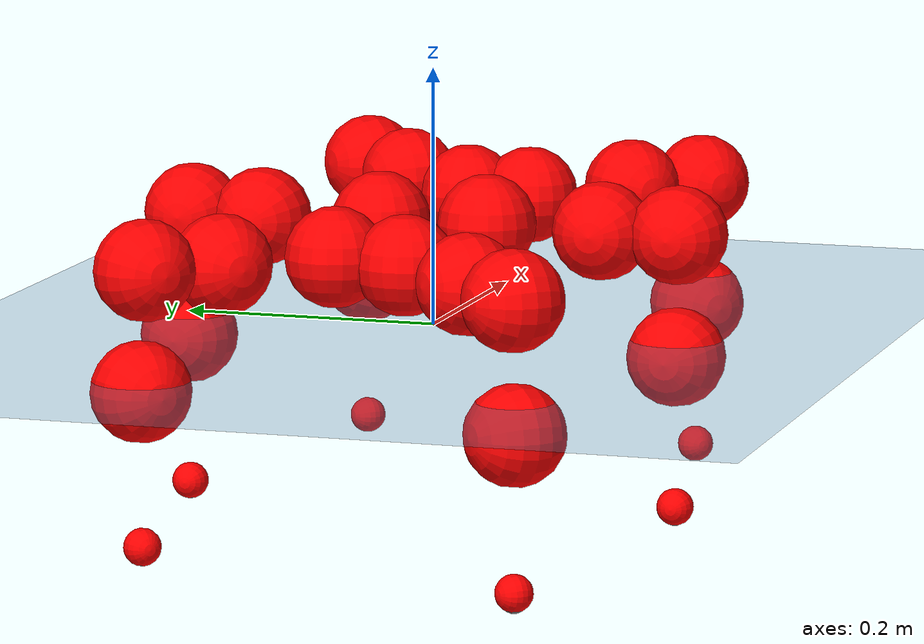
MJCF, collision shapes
<mujoco model="Golem">
  <compiler angle="radian" assetdir="assets" balanceinertia="true" inertiafromgeom="false"/>

  <option timestep="0.005" density="1.2" viscosity="2e-05"/>

  <size nkey="1"/>

  <visual>
    <quality shadowsize="8192"/>
    <map shadowclip="0.5"/>
  </visual>

  <default>
    <default class="/">
      <joint armature="0.01" damping="0.01" frictionloss="0.01"/>
      <geom contype="0" conaffinity="0" group="1" solref="-1000 -80"/>
      <site size="0.01 0.005 0.005" group="5"/>
      <general forcelimited="true" biastype="affine" gainprm="25" biasprm="0 -25 -0.5"/>
      <default class="visual">
        <geom type="mesh" group="2"/>
      </default>
      <default class="collision">
        <geom group="3"/>
      </default>
      <default class="foot">
        <geom size="0.01 0 0" condim="6" group="4" priority="1" solimp="0.015 1 0.01"/>
      </default>
      <default class="reward_collision_sphere">
        <geom group="5" rgba="1 0 0 1"/>
      </default>
    </default>
  </default>

  <asset>
    <texture type="skybox" colorspace="auto" name="//unnamed_texture_0" builtin="gradient" rgb1="0.95 0.95 0.95" rgb2="0.95 0.95 0.95" width="100" height="600"/>
    <texture type="2d" colorspace="auto" name="texplane" builtin="checker" rgb1="0.345 0.575 0.748" rgb2="0.345 0.575 0.748" markrgb="1 1 1" width="512" height="512"/>
    <material name="MatPlane" class="/" texture="texplane" texuniform="true" texrepeat="2 2" specular="0.9"/>
    <mesh name="body" class="/" file="body.stl" scale="0.001 0.001 0.001"/>
    <mesh name="coxa" class="/" file="coxa.stl" scale="0.001 0.001 0.001"/>
    <mesh name="femur" class="/" file="femur.stl" scale="0.001 0.001 0.001"/>
    <mesh name="tibia" class="/" file="tibia.stl" scale="0.001 0.001 0.001"/>
    <mesh name="tarsus" class="/" file="tarsus.stl" scale="0.001 0.001 0.001"/>
  </asset>

  <worldbody>
    <geom name="floor" class="/" size="100 100 0.125" type="plane" group="0" material="MatPlane"/>
    <light name="toplight_shadow" class="/" pos="0 0 5" dir="0.0990148 0.0990148 -0.990148" type="directional" ambient="0.04 0.04 0.04" diffuse="0.55 0.55 0.55" specular="0.12 0.12 0.12"/>
    <light name="toplight_fill" class="/" pos="0 0 5" dir="0.0990148 0.0990148 -0.990148" type="directional" castshadow="false" ambient="0.04 0.04 0.04" diffuse="0.3 0.3 0.3" specular="0.08 0.08 0.08"/>
    <body name="trunk" pos="0.00234153 -0.0020448 0.00107886" quat="1 -0.000105831 6.1447e-05 0.000151558">
      <inertial pos="-0.00159755 -0.00191097 0.00273026" quat="0.999982 0.00171404 -0.00212259 -0.00530059" mass="3.14918" diaginertia="0.0148768 0.000626468 0.0256028"/>
      <joint name="//unnamed_joint_0" type="free"/>
      <geom name="//unnamed_geom_1" class="/" pos="0 0 0.0768272" quat="1 0 0 0" type="mesh" rgba="0.9 0.9 0.9 1" mesh="body"/>
      <site name="imu" class="/" pos="0.132777 -0.00329347 0.111759" size="0.00955088"/>
      <camera name="track" class="/" pos="0 -1.15257 0" quat="0.707107 0.707107 0 0" mode="trackcom"/>
      <camera name="ego_camera" class="/" pos="0.141512 0 0.120043" quat="-0.5 -0.5 0.5 0.5"/>
      <body name="coxa_RR" pos="-0.192638 -0.0513755 0.0745812" quat="0.382736 -0.000727583 -0.000292878 -0.923858">
        <inertial pos="0.00027371 0.00325686 -0.0026837" quat="0.999968 -0.00422191 0.00663563 -0.00132052" mass="0.17369" diaginertia="0.0155261 0.000620704 0.024862"/>
        <joint name="coxa_joint_RR" class="/" pos="0 0 0" axis="0.00333127 0.00219936 -0.999992" range="-3.14489 3.14028" armature="0.00947666" damping="0.0213528" frictionloss="0.00853165"/>
        <geom name="//unnamed_geom_2" class="/" type="mesh" rgba="0.2 0.2 0.2 1" mesh="coxa"/>
        <geom name="//unnamed_geom_3" class="reward_collision_sphere" size="0.0382035" pos="-0.0326567 0 0"/>
        <body name="femur_RR" pos="0.0612438 0.00219561 0.000123546" quat="0.49948 -0.499993 0.50077 0.499756">
          <inertial pos="0.000309291 0.0012904 -0.00234926" quat="1 3.08417e-05 4.57544e-05 -7.43111e-05" mass="0.172365" diaginertia="0.0150977 0.00062348 0.0245215"/>
          <joint name="femur_joint_RR" class="/" pos="0 0 0" axis="0.00310299 0.00139741 -0.999994" range="-3.15082 3.16382" armature="0.00946111" damping="0.0122688" frictionloss="0.00934879"/>
          <geom name="//unnamed_geom_4" class="/" type="mesh" rgba="0.9 0.9 0.9 1" mesh="femur"/>
          <geom name="//unnamed_geom_5" class="reward_collision_sphere" size="0.0382035"/>
          <body name="tibia_RR" pos="0.00256389 -0.0630128 0.00374905" quat="3.51463e-06 1 0.000368212 5.10284e-05">
            <inertial pos="0.00152868 -0.000275802 0.00238296" quat="0.999976 -0.00358862 -0.00295357 -0.00520203" mass="0.178545" diaginertia="0.0156556 0.000643648 0.0242599"/>
            <joint name="tibia_joint_RR" class="/" pos="0 0 0" axis="-0.000775745 -0.000562125 1" range="-3.17641 3.22458" armature="0.00828094" damping="0.0110961" frictionloss="0.0106102"/>
            <geom name="//unnamed_geom_6" class="/" type="mesh" rgba="0.2 0.2 0.2 1" mesh="tibia"/>
            <geom name="//unnamed_geom_7" class="reward_collision_sphere" size="0.0382035"/>
            <body name="tarsus_RR" pos="0.0987722 0.00187276 -0.000943477" quat="1 3.74613e-05 -0.000679822 -0.000257296">
              <inertial pos="0.0655757 -0.00407893 0.00106034" quat="0.496913 0.500409 0.507207 0.495387" mass="0.164431" diaginertia="0.0146359 0.000609424 0.0241981"/>
              <joint name="tarsus_joint_RR" class="/" pos="0 0 0" axis="-0.00071582 -0.000173748 1" range="-3.19944 3.12222" armature="0.010712" damping="0.0448964" frictionloss="0.0103179"/>
              <geom name="//unnamed_geom_8" class="/" type="mesh" rgba="0.9 0.9 0.9 1" mesh="tarsus"/>
              <geom name="foot_1" class="foot" size="0.0101663" pos="0.121918 0 0" quat="0 -0.707107 0 0.707107"/>
              <geom name="//unnamed_geom_10" class="reward_collision_sphere" size="0.0382035"/>
              <geom name="//unnamed_geom_11" class="reward_collision_sphere" size="0.0143263" pos="0.11702 0 0"/>
              <site name="foot_1" class="foot" pos="0.121918 0 0" quat="0 -0.707107 0 0.707107" size="0.00955088"/>
            </body>
          </body>
        </body>
      </body>
      <body name="coxa_RM" pos="-0.00267529 -0.0740825 0.0800962" quat="0.70678 0.000312415 -0.000215925 -0.707433">
        <inertial pos="-0.00126893 0.00198371 0.0029796" quat="1 -5.153e-05 7.45021e-05 2.26896e-05" mass="0.178645" diaginertia="0.015818 0.000654656 0.0257438"/>
        <joint name="coxa_joint_RM" class="/" pos="0 0 0" axis="-0.00817365 -0.000283896 -0.999967" stiffness="0.0149197" range="-3.18825 3.08482" armature="0.00996216" damping="0.0350955" frictionloss="0.0113977"/>
        <geom name="//unnamed_geom_12" class="/" type="mesh" rgba="0.2 0.2 0.2 1" mesh="coxa"/>
        <geom name="//unnamed_geom_13" class="reward_collision_sphere" size="0.0382035" pos="-0.0326567 0 0"/>
        <body name="femur_RM" pos="0.058846 0.000451132 -0.00121277" quat="0.499287 -0.499749 0.500852 0.50011">
          <inertial pos="0.00109077 -0.00162911 -0.000367554" quat="0.999914 0.00877231 0.000563224 0.00974499" mass="0.168248" diaginertia="0.015378 0.000603058 0.0246946"/>
          <joint name="femur_joint_RM" class="/" pos="0 0 0" axis="0.00464158 -0.0131864 -0.999902" range="-3.08728 3.10705" armature="0.00868276" damping="0.0102837" frictionloss="0.00945601"/>
          <geom name="//unnamed_geom_14" class="/" type="mesh" rgba="0.9 0.9 0.9 1" mesh="femur"/>
          <geom name="//unnamed_geom_15" class="reward_collision_sphere" size="0.0382035"/>
          <body name="tibia_RM" pos="0.000377739 -0.0603116 0.00125209" quat="1.23569e-05 1 1.33928e-05 -5.41214e-05">
            <inertial pos="0.00322947 0.00209066 0.0026719" quat="0.999858 -0.00413991 -0.0154416 -0.00526816" mass="0.173929" diaginertia="0.0153708 0.000638957 0.0260694"/>
            <joint name="tibia_joint_RM" class="/" pos="0 0 0" axis="0.00150923 0.000635664 0.999999" range="-3.12873 3.17603" armature="0.0103867" damping="0" frictionloss="0.0101188"/>
            <geom name="//unnamed_geom_16" class="/" type="mesh" rgba="0.2 0.2 0.2 1" mesh="tibia"/>
            <geom name="//unnamed_geom_17" class="reward_collision_sphere" size="0.0382035"/>
            <body name="tarsus_RM" pos="0.0937565 -3.03821e-05 0.00311168" quat="0.999999 0.000709566 0.000815603 0.000680155">
              <inertial pos="0.0647417 0.00264558 -0.00191062" quat="0.504126 0.502493 0.494203 0.499121" mass="0.175849" diaginertia="0.0158335 0.000621421 0.0251856"/>
              <joint name="tarsus_joint_RM" class="/" pos="0 0 0" axis="-0.00620395 0.00923062 0.999938" range="-3.13373 3.13942" armature="0.0106561" damping="0.00162421" frictionloss="0.0103828"/>
              <geom name="//unnamed_geom_18" class="/" type="mesh" rgba="0.9 0.9 0.9 1" mesh="tarsus"/>
              <geom name="foot_2" class="foot" size="0.00976997" pos="0.121918 0 0" quat="0 -0.707107 0 0.707107"/>
              <geom name="//unnamed_geom_20" class="reward_collision_sphere" size="0.0382035"/>
              <geom name="//unnamed_geom_21" class="reward_collision_sphere" size="0.0143263" pos="0.11702 0 0"/>
              <site name="foot_2" class="foot" pos="0.121918 0 0" quat="0 -0.707107 0 0.707107" size="0.00955088"/>
            </body>
          </body>
        </body>
      </body>
      <body name="coxa_RF" pos="0.197606 -0.0473774 0.074498" quat="0.923823 -0.000191833 0.000320163 -0.38282">
        <inertial pos="-0.00125778 -5.27195e-05 0.00082967" quat="0.999951 0.00366329 0.00923675 -6.47687e-06" mass="0.174158" diaginertia="0.0146052 0.00064969 0.0252507"/>
        <joint name="coxa_joint_RF" class="/" pos="0 0 0" axis="-0.00272221 0.00273459 -0.999993" range="-3.15746 3.10128" armature="0.0086211" damping="0.0273965" frictionloss="0.00889524"/>
        <geom name="//unnamed_geom_22" class="/" type="mesh" rgba="0.2 0.2 0.2 1" mesh="coxa"/>
        <geom name="//unnamed_geom_23" class="reward_collision_sphere" size="0.0382035" pos="-0.0326567 0 0"/>
        <body name="femur_RF" pos="0.0620816 0.00257371 -0.000963832" quat="0.500655 -0.499433 0.499725 0.500186">
          <inertial pos="-0.00128573 -0.0028787 0.000574816" quat="0.999913 -0.00795687 -0.00711435 -0.00772569" mass="0.169513" diaginertia="0.0145237 0.000590247 0.0250938"/>
          <joint name="femur_joint_RF" class="/" pos="0 0 0" axis="0.00270181 0.00233707 -0.999994" range="-3.16903 3.15723" armature="0.0096373" damping="0.00784106" frictionloss="0.0107136"/>
          <geom name="//unnamed_geom_24" class="/" type="mesh" rgba="0.9 0.9 0.9 1" mesh="femur"/>
          <geom name="//unnamed_geom_25" class="reward_collision_sphere" size="0.0382035"/>
          <body name="tibia_RF" pos="0.00102069 -0.0658413 0.00117198" quat="-5.80474e-05 1 0.000170076 8.89086e-05">
            <inertial pos="0.00231945 0.000766419 -9.36507e-05" quat="0.999913 0.0127612 0.00295971 0.0012351" mass="0.171102" diaginertia="0.0143632 0.00061924 0.0244672"/>
            <joint name="tibia_joint_RF" class="/" pos="0 0 0" axis="0.00139054 -0.00609557 0.99998" range="-3.10744 3.08626" armature="0.0104719" damping="0.000175541" frictionloss="0.00991485"/>
            <geom name="//unnamed_geom_26" class="/" type="mesh" rgba="0.2 0.2 0.2 1" mesh="tibia"/>
            <geom name="//unnamed_geom_27" class="reward_collision_sphere" size="0.0382035"/>
            <body name="tarsus_RF" pos="0.0995173 -0.00223902 -0.00258804" quat="0.999999 -0.000326888 0.00128157 0.000291058">
              <inertial pos="0.0687072 0.00298765 -0.00251146" quat="0.495739 0.516557 0.495617 0.491707" mass="0.174041" diaginertia="0.0147027 0.000658523 0.024634"/>
              <joint name="tarsus_joint_RF" class="/" pos="0 0 0" axis="0.00296188 0.00141236 0.999995" stiffness="0.0197824" range="-3.19442 3.10586" armature="0.00751529" damping="0.0133489" frictionloss="0.00935689"/>
              <geom name="//unnamed_geom_28" class="/" type="mesh" rgba="0.9 0.9 0.9 1" mesh="tarsus"/>
              <geom name="foot_3" class="foot" size="0.00857795" pos="0.121918 0 0" quat="0 -0.707107 0 0.707107"/>
              <geom name="//unnamed_geom_30" class="reward_collision_sphere" size="0.0382035"/>
              <geom name="//unnamed_geom_31" class="reward_collision_sphere" size="0.0143263" pos="0.11702 0 0"/>
              <site name="foot_3" class="foot" pos="0.121918 0 0" quat="0 -0.707107 0 0.707107" size="0.00955088"/>
            </body>
          </body>
        </body>
      </body>
      <body name="coxa_LR" pos="-0.192645 0.0495838 0.0781466" quat="0.383113 0.000850958 -0.000317755 0.923701">
        <inertial pos="-0.0025139 0.00327626 0.00380071" quat="0.999994 0.00162286 0.000797575 -0.00287698" mass="0.181202" diaginertia="0.0163301 0.000639293 0.0258654"/>
        <joint name="coxa_joint_LR" class="/" pos="0 0 0" axis="0.00955909 -0.000668436 -0.999954" range="-3.17722 3.08143" armature="0.0106187" damping="0.0160747" frictionloss="0.00850052"/>
        <geom name="//unnamed_geom_32" class="/" type="mesh" rgba="0.2 0.2 0.2 1" mesh="coxa"/>
        <geom name="//unnamed_geom_33" class="reward_collision_sphere" size="0.0382035" pos="-0.0326567 0 0"/>
        <body name="femur_LR" pos="0.0611552 0.000272176 0.00164539" quat="0.500039 -0.500055 0.499951 0.499956">
          <inertial pos="0.00267945 -0.00107941 0.00266776" quat="0.999903 0.0121315 0.00624793 0.00281314" mass="0.166968" diaginertia="0.0150005 0.00061895 0.0229929"/>
          <joint name="femur_joint_LR" class="/" pos="0 0 0" axis="0.00203811 0.00902402 0.999957" stiffness="0.00560729" range="-3.21536 3.15259" armature="0.0100563" damping="0.0122459" frictionloss="0.00870093"/>
          <geom name="//unnamed_geom_34" class="/" type="mesh" rgba="0.9 0.9 0.9 1" mesh="femur"/>
          <geom name="//unnamed_geom_35" class="reward_collision_sphere" size="0.0382035"/>
          <body name="tibia_LR" pos="-0.000568441 -0.0625758 -0.000523252" quat="0.000378064 1 0.00056745 -0.00041179">
            <inertial pos="-0.00153336 0.00318852 0.000147824" quat="0.999984 -0.00445995 0.00206892 -0.00264287" mass="0.173474" diaginertia="0.0153406 0.000649568 0.0247148"/>
            <joint name="tibia_joint_LR" class="/" pos="0 0 0" axis="-0.00388586 -0.00388699 -0.999985" range="-3.12509 3.16402" armature="0.00903824" damping="0.0376393" frictionloss="0.0099788"/>
            <geom name="//unnamed_geom_36" class="/" type="mesh" rgba="0.2 0.2 0.2 1" mesh="tibia"/>
            <geom name="//unnamed_geom_37" class="reward_collision_sphere" size="0.0382035"/>
            <body name="tarsus_LR" pos="0.0909981 0.00224231 0.00295548" quat="1 -0.000349193 -0.000271969 -0.000567326">
              <inertial pos="0.0624192 -0.000841984 -0.000514956" quat="0.497489 0.501069 0.501959 0.499472" mass="0.172229" diaginertia="0.0160572 0.000648033 0.0262328"/>
              <joint name="tarsus_joint_LR" class="/" pos="0 0 0" axis="0.00921993 -0.000162937 -0.999957" stiffness="0.0116402" range="-3.10699 3.12806" armature="0.0093482" damping="0.0347999" frictionloss="0.0104897"/>
              <geom name="//unnamed_geom_38" class="/" type="mesh" rgba="0.9 0.9 0.9 1" mesh="tarsus"/>
              <geom name="foot_4" class="foot" size="0.00942167" pos="0.121918 0 0" quat="0.707107 0 -0.707107 0"/>
              <geom name="//unnamed_geom_40" class="reward_collision_sphere" size="0.0382035"/>
              <geom name="//unnamed_geom_41" class="reward_collision_sphere" size="0.0143263" pos="0.11702 0 0"/>
              <site name="foot_4" class="foot" pos="0.121918 0 0" quat="0.707107 0 -0.707107 0" size="0.00955088"/>
            </body>
          </body>
        </body>
      </body>
      <body name="coxa_LM" pos="-8.64227e-05 0.0774369 0.0782955" quat="0.706949 -0.000590962 -0.000211605 0.707264">
        <inertial pos="0.00156891 -0.00268004 0.00036388" quat="0.999993 0.00109089 -0.0028336 0.00212969" mass="0.181307" diaginertia="0.0158086 0.000671587 0.024682"/>
        <joint name="coxa_joint_LM" class="/" pos="0 0 0" axis="-0.00157028 0.00816852 -0.999965" range="-3.13373 3.15302" armature="0.00831629" damping="0.0242601" frictionloss="0.00921807"/>
        <geom name="//unnamed_geom_42" class="/" type="mesh" rgba="0.2 0.2 0.2 1" mesh="coxa"/>
        <geom name="//unnamed_geom_43" class="reward_collision_sphere" size="0.0382035" pos="-0.0326567 0 0"/>
        <body name="femur_LM" pos="0.0631415 0.002471 -0.00107673" quat="0.500477 -0.500033 0.499303 0.500186">
          <inertial pos="-0.000457067 0.0015354 -0.00207077" quat="0.999996 -0.00113291 0.00137217 0.00239096" mass="0.174317" diaginertia="0.0156325 0.000639121 0.0241598"/>
          <joint name="femur_joint_LM" class="/" pos="0 0 0" axis="-0.0106202 -0.00452633 0.999933" range="-3.1009 3.1479" armature="0.0106191" damping="0.00820095" frictionloss="0.00977511"/>
          <geom name="//unnamed_geom_44" class="/" type="mesh" rgba="0.9 0.9 0.9 1" mesh="femur"/>
          <geom name="//unnamed_geom_45" class="reward_collision_sphere" size="0.0382035"/>
          <body name="tibia_LM" pos="-0.000505947 -0.0580759 -0.00267204" quat="-0.000292026 1 -0.000378796 -0.000133253">
            <inertial pos="-0.000959497 0.00266512 -0.00377651" quat="0.999807 -0.00804021 -0.00467572 -0.0172884" mass="0.180256" diaginertia="0.0150034 0.00065241 0.0252286"/>
            <joint name="tibia_joint_LM" class="/" pos="0 0 0" axis="-0.00160423 -0.00112583 -0.999998" stiffness="0.016543" range="-3.13438 3.17891" armature="0.0107657" damping="0.0128962" frictionloss="0.00992985"/>
            <geom name="//unnamed_geom_46" class="/" type="mesh" rgba="0.2 0.2 0.2 1" mesh="tibia"/>
            <geom name="//unnamed_geom_47" class="reward_collision_sphere" size="0.0382035"/>
            <body name="tarsus_LM" pos="0.0971206 0.00324725 -0.00200802" quat="0.999999 0.000554596 0.000364456 -0.000994249">
              <inertial pos="0.0630794 -0.00124332 0.00119623" quat="0.490182 0.509073 0.505298 0.495217" mass="0.167477" diaginertia="0.0144986 0.000625637 0.0241985"/>
              <joint name="tarsus_joint_LM" class="/" pos="0 0 0" axis="-0.00346933 -0.00719709 -0.999968" stiffness="0.0205223" range="-3.14774 3.17442" armature="0.00847653" damping="0.0254812" frictionloss="0.00949087"/>
              <geom name="//unnamed_geom_48" class="/" type="mesh" rgba="0.9 0.9 0.9 1" mesh="tarsus"/>
              <geom name="foot_5" class="foot" size="0.00949965" pos="0.121918 0 0" quat="0.707107 0 -0.707107 0"/>
              <geom name="//unnamed_geom_50" class="reward_collision_sphere" size="0.0382035"/>
              <geom name="//unnamed_geom_51" class="reward_collision_sphere" size="0.0143263" pos="0.11702 0 0"/>
              <site name="foot_5" class="foot" pos="0.121918 0 0" quat="0.707107 0 -0.707107 0" size="0.00955088"/>
            </body>
          </body>
        </body>
      </body>
      <body name="coxa_LF" pos="0.193755 0.0486748 0.0747897" quat="0.923472 -0.000248554 -0.000384425 0.383665">
        <inertial pos="0.00293658 -0.00255614 0.00203548" quat="0.999811 0.0156231 0.00945196 -0.00664474" mass="0.172462" diaginertia="0.0153311 0.000633058 0.0267378"/>
        <joint name="coxa_joint_LF" class="/" pos="0 0 0" axis="0.000372705 -0.0186974 -0.999825" stiffness="0.0254441" range="-3.13475 3.14194" armature="0.00992482" damping="0.0105655" frictionloss="0.0106846"/>
        <geom name="//unnamed_geom_52" class="/" type="mesh" rgba="0.2 0.2 0.2 1" mesh="coxa"/>
        <geom name="//unnamed_geom_53" class="reward_collision_sphere" size="0.0382035" pos="-0.0326567 0 0"/>
        <body name="femur_LF" pos="0.0641831 0.00349122 0.000681502" quat="0.500549 -0.500081 0.499844 0.499526">
          <inertial pos="-0.00165989 -0.00296157 -0.0028512" quat="0.999922 -0.00261446 -0.00140031 0.0121696" mass="0.172336" diaginertia="0.0156067 0.000638059 0.0262777"/>
          <joint name="femur_joint_LF" class="/" pos="0 0 0" axis="0.00184797 -0.00332192 0.999993" range="-3.12397 3.05782" armature="0.00969071" damping="0.0225711" frictionloss="0.00975077"/>
          <geom name="//unnamed_geom_54" class="/" type="mesh" rgba="0.9 0.9 0.9 1" mesh="femur"/>
          <geom name="//unnamed_geom_55" class="reward_collision_sphere" size="0.0382035"/>
          <body name="tibia_LF" pos="-0.00250888 -0.0627303 0.0026613" quat="-0.000143571 1 -0.000220761 9.12186e-05">
            <inertial pos="-0.00179996 0.00311514 0.00055596" quat="0.999996 0.00140882 0.00233838 -0.000537707" mass="0.175355" diaginertia="0.0152723 0.000637124 0.0249393"/>
            <joint name="tibia_joint_LF" class="/" pos="0 0 0" axis="0.00389572 0.00214072 -0.99999" stiffness="0.0024493" range="-3.18637 3.14534" armature="0.0107573" damping="0" frictionloss="0.0107953"/>
            <geom name="//unnamed_geom_56" class="/" type="mesh" rgba="0.2 0.2 0.2 1" mesh="tibia"/>
            <geom name="//unnamed_geom_57" class="reward_collision_sphere" size="0.0382035"/>
            <body name="tarsus_LF" pos="0.0942127 -0.00243817 -0.00411858" quat="0.999999 -0.000354917 0.00044534 -0.00114109">
              <inertial pos="0.0661716 0.00313758 -0.000258644" quat="0.497317 0.500513 0.501224 0.500936" mass="0.170744" diaginertia="0.0145058 0.000606648 0.0241178"/>
              <joint name="tarsus_joint_LF" class="/" pos="0 0 0" axis="0.00804886 -0.00865722 -0.99993" stiffness="0.0268393" range="-3.09273 3.08417" armature="0.00961904" damping="0.0116821" frictionloss="0.00922708"/>
              <geom name="//unnamed_geom_58" class="/" type="mesh" rgba="0.9 0.9 0.9 1" mesh="tarsus"/>
              <geom name="foot_6" class="foot" size="0.00888674" pos="0.121918 0 0" quat="0.707107 0 -0.707107 0"/>
              <geom name="//unnamed_geom_60" class="reward_collision_sphere" size="0.0382035"/>
              <geom name="//unnamed_geom_61" class="reward_collision_sphere" size="0.0143263" pos="0.11702 0 0"/>
              <site name="foot_6" class="foot" pos="0.121918 0 0" quat="0.707107 0 -0.707107 0" size="0.00955088"/>
            </body>
          </body>
        </body>
      </body>
    </body>
  </worldbody>

  <contact>
    <pair class="/" geom1="floor" geom2="foot_1" name="//unnamed_contact_0"/>
    <pair class="/" geom1="floor" geom2="foot_2" name="//unnamed_contact_1"/>
    <pair class="/" geom1="floor" geom2="foot_3" name="//unnamed_contact_2"/>
    <pair class="/" geom1="floor" geom2="foot_4" name="//unnamed_contact_3"/>
    <pair class="/" geom1="floor" geom2="foot_5" name="//unnamed_contact_4"/>
    <pair class="/" geom1="floor" geom2="foot_6" name="//unnamed_contact_5"/>
  </contact>

  <actuator>
    <general name="coxa_joint_RR" class="/" joint="coxa_joint_RR" forcerange="-7.54942 7.54942" gainprm="22.4549" biasprm="0 -22.4549 -0.471259"/>
    <general name="femur_joint_RR" class="/" joint="femur_joint_RR" forcerange="-6.53083 6.53083" gainprm="22.4549" biasprm="0 -22.4549 -0.471259"/>
    <general name="tibia_joint_RR" class="/" joint="tibia_joint_RR" forcerange="-7.78871 7.78871" gainprm="22.4549" biasprm="0 -22.4549 -0.471259"/>
    <general name="tarsus_joint_RR" class="/" joint="tarsus_joint_RR" forcerange="-6.78232 6.78232" gainprm="22.4549" biasprm="0 -22.4549 -0.471259"/>
    <general name="coxa_joint_RM" class="/" joint="coxa_joint_RM" forcerange="-7.02496 7.02496" gainprm="22.4549" biasprm="0 -22.4549 -0.471259"/>
    <general name="femur_joint_RM" class="/" joint="femur_joint_RM" forcerange="-7.08227 7.08227" gainprm="22.4549" biasprm="0 -22.4549 -0.471259"/>
    <general name="tibia_joint_RM" class="/" joint="tibia_joint_RM" forcerange="-7.99499 7.99499" gainprm="22.4549" biasprm="0 -22.4549 -0.471259"/>
    <general name="tarsus_joint_RM" class="/" joint="tarsus_joint_RM" forcerange="-6.28816 6.28816" gainprm="22.4549" biasprm="0 -22.4549 -0.471259"/>
    <general name="coxa_joint_RF" class="/" joint="coxa_joint_RF" forcerange="-6.81693 6.81693" gainprm="22.4549" biasprm="0 -22.4549 -0.471259"/>
    <general name="femur_joint_RF" class="/" joint="femur_joint_RF" forcerange="-5.94701 5.94701" gainprm="22.4549" biasprm="0 -22.4549 -0.471259"/>
    <general name="tibia_joint_RF" class="/" joint="tibia_joint_RF" forcerange="-7.41748 7.41748" gainprm="22.4549" biasprm="0 -22.4549 -0.471259"/>
    <general name="tarsus_joint_RF" class="/" joint="tarsus_joint_RF" forcerange="-5.96897 5.96897" gainprm="22.4549" biasprm="0 -22.4549 -0.471259"/>
    <general name="coxa_joint_LR" class="/" joint="coxa_joint_LR" forcerange="-7.27039 7.27039" gainprm="22.4549" biasprm="0 -22.4549 -0.471259"/>
    <general name="femur_joint_LR" class="/" joint="femur_joint_LR" forcerange="-7.60382 7.60382" gainprm="22.4549" biasprm="0 -22.4549 -0.471259"/>
    <general name="tibia_joint_LR" class="/" joint="tibia_joint_LR" forcerange="-7.27097 7.27097" gainprm="22.4549" biasprm="0 -22.4549 -0.471259"/>
    <general name="tarsus_joint_LR" class="/" joint="tarsus_joint_LR" forcerange="-7.20064 7.20064" gainprm="22.4549" biasprm="0 -22.4549 -0.471259"/>
    <general name="coxa_joint_LM" class="/" joint="coxa_joint_LM" forcerange="-7.46165 7.46165" gainprm="22.4549" biasprm="0 -22.4549 -0.471259"/>
    <general name="femur_joint_LM" class="/" joint="femur_joint_LM" forcerange="-6.92202 6.92202" gainprm="22.4549" biasprm="0 -22.4549 -0.471259"/>
    <general name="tibia_joint_LM" class="/" joint="tibia_joint_LM" forcerange="-7.64175 7.64175" gainprm="22.4549" biasprm="0 -22.4549 -0.471259"/>
    <general name="tarsus_joint_LM" class="/" joint="tarsus_joint_LM" forcerange="-6.92281 6.92281" gainprm="22.4549" biasprm="0 -22.4549 -0.471259"/>
    <general name="coxa_joint_LF" class="/" joint="coxa_joint_LF" forcerange="-7.62668 7.62668" gainprm="22.4549" biasprm="0 -22.4549 -0.471259"/>
    <general name="femur_joint_LF" class="/" joint="femur_joint_LF" forcerange="-7.34668 7.34668" gainprm="22.4549" biasprm="0 -22.4549 -0.471259"/>
    <general name="tibia_joint_LF" class="/" joint="tibia_joint_LF" forcerange="-6.84046 6.84046" gainprm="22.4549" biasprm="0 -22.4549 -0.471259"/>
    <general name="tarsus_joint_LF" class="/" joint="tarsus_joint_LF" forcerange="-7.01829 7.01829" gainprm="22.4549" biasprm="0 -22.4549 -0.471259"/>
  </actuator>

  <sensor>
    <gyro site="imu" name="imu_angular_velocity"/>
    <velocimeter site="imu" name="imu_linear_velocity"/>
    <framelinvel objtype="site" objname="foot_1" name="foot_1_global_linear_velocity"/>
    <framelinvel objtype="site" objname="foot_2" name="foot_2_global_linear_velocity"/>
    <framelinvel objtype="site" objname="foot_3" name="foot_3_global_linear_velocity"/>
    <framelinvel objtype="site" objname="foot_4" name="foot_4_global_linear_velocity"/>
    <framelinvel objtype="site" objname="foot_5" name="foot_5_global_linear_velocity"/>
    <framelinvel objtype="site" objname="foot_6" name="foot_6_global_linear_velocity"/>
  </sensor>

  <keyframe>
    <key name="home" qpos="0 0 0.1457 1 0 0 0 0 0 0 0 0 0 0 0 0 0 0 0 0 0 0 0 0 0 0 0 0 0 0 0"/>
  </keyframe>
</mujoco>
